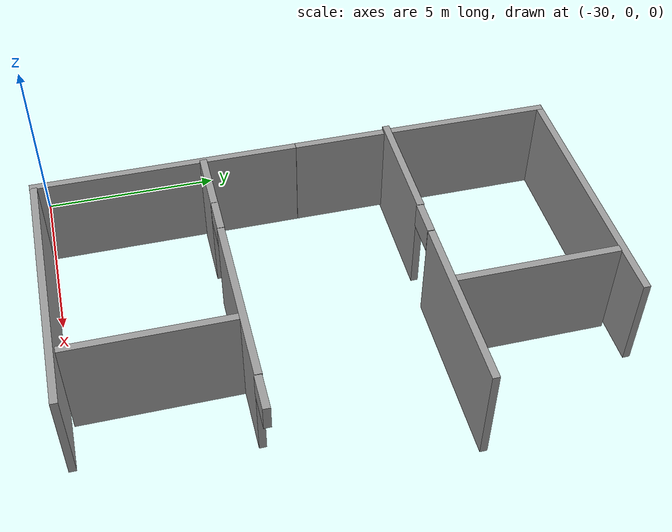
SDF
<sdf version="1.7">
 <world name="default">
  <model name="grey_wall">
   <static>1</static>
   <link name="link">
    <pose>0 0 1.4 0 -0 0</pose>
    <collision name="collision"><geometry><box><size>7.5 0.2 2.8</size></box></geometry></collision>
    <visual name="visual">
     <cast_shadows>0</cast_shadows>
     <geometry><box><size>7.5 0.2 2.8</size></box></geometry>
     <material>
      <script>
       <uri>model://grey_wall/materials/scripts</uri>
       <uri>model://grey_wall/materials/textures</uri>
       <name>vrc/grey_wall</name>
      </script>
     </material>
    </visual>
   </link>
   <pose>-23.9976 -0.145866 0 0 -0 0</pose>
  </model>
  <model name="grey_wall_clone_0_clone_0">
   <static>1</static>
   <link name="link">
    <pose>0 0 1.4 0 -0 0</pose>
    <collision name="collision"><geometry><box><size>7.5 0.2 2.8</size></box></geometry></collision>
    <visual name="visual">
     <cast_shadows>0</cast_shadows>
     <geometry><box><size>7.5 0.2 2.8</size></box></geometry>
     <material>
      <script>
       <uri>model://grey_wall/materials/scripts</uri>
       <uri>model://grey_wall/materials/textures</uri>
       <name>vrc/grey_wall</name>
      </script>
     </material>
    </visual>
   </link>
   <pose>-27.7951 3.49573 0 0 -0 1.57</pose>
  </model>
  <model name="grey_wall_clone_0_clone">
   <static>1</static>
   <link name="link">
    <pose>0 0 1.4 0 -0 0</pose>
    <collision name="collision"><geometry><box><size>7.5 0.2 2.8</size></box></geometry></collision>
    <visual name="visual">
     <cast_shadows>0</cast_shadows>
     <geometry><box><size>7.5 0.2 2.8</size></box></geometry>
     <material>
      <script>
       <uri>model://grey_wall/materials/scripts</uri>
       <uri>model://grey_wall/materials/textures</uri>
       <name>vrc/grey_wall</name>
      </script>
     </material>
    </visual>
   </link>
   <pose>-27.7906 10.9996 0 0 -0 1.57</pose>
  </model>
  <model name="grey_wall_1_clone_0_clone">
   <static>1</static>
   <link name="link">
    <pose>0 0 1.4 0 -0 0</pose>
    <collision name="collision"><geometry><box><size>7.5 0.2 2.8</size></box></geometry></collision>
    <visual name="visual">
     <cast_shadows>0</cast_shadows>
     <geometry><box><size>7.5 0.2 2.8</size></box></geometry>
     <material>
      <script>
       <uri>model://grey_wall/materials/scripts</uri>
       <uri>model://grey_wall/materials/textures</uri>
       <name>vrc/grey_wall</name>
      </script>
     </material>
    </visual>
   </link>
   <pose>-24.1114 14.6546 0 0 -0 0</pose>
  </model>
  <model name="grey_wall_1_clone_1_clone_clone_0_clone_clone_clone">
   <link name="link">
    <pose>0 0 1.4 0 -0 0</pose>
    <inertial>
     <mass>1</mass>
     <inertia><ixx>1</ixx><ixy>0</ixy><ixz>0</ixz><iyy>1</iyy><iyz>0</iyz><izz>1</izz></inertia>
    </inertial>
    <visual name="visual">
     <cast_shadows>0</cast_shadows>
     <geometry><box><size>4.5 0.2 3</size></box></geometry>
     <material>
      <script>
       <uri>model://grey_wall/materials/scripts</uri>
       <uri>model://grey_wall/materials/textures</uri>
       <name>vrc/grey_wall</name>
      </script>
      <shader type="pixel"><normal_map>__default__</normal_map></shader>
      <ambient>1 1 1 1</ambient>
      <diffuse>1 1 1 1</diffuse>
      <specular>0 0 0 1</specular>
      <emissive>0 0 0 1</emissive>
     </material>
    </visual>
    <collision name="collision">
     <geometry><box><size>4.5 0.2 3</size></box></geometry>
     <surface>
      <friction>
       <ode><mu>1</mu><mu2>1</mu2><fdir1>0 0 0</fdir1><slip1>0</slip1><slip2>0</slip2></ode>
       <torsional>
        <coefficient>1</coefficient>
        <patch_radius>0</patch_radius>
        <surface_radius>0</surface_radius>
        <use_patch_radius>1</use_patch_radius>
        <ode><slip>0</slip></ode>
       </torsional>
      </friction>
      <bounce><restitution_coefficient>0</restitution_coefficient><threshold>1e+06</threshold></bounce>
      <contact>
       <collide_without_contact>0</collide_without_contact>
       <collide_without_contact_bitmask>1</collide_without_contact_bitmask>
       <collide_bitmask>1</collide_bitmask>
       <ode>
        <soft_cfm>0</soft_cfm>
        <soft_erp>0.2</soft_erp>
        <kp>1e+13</kp>
        <kd>1</kd>
        <max_vel>0.01</max_vel>
        <min_depth>0</min_depth>
       </ode>
       <bullet>
        <split_impulse>1</split_impulse>
        <split_impulse_penetration_threshold>-0.01</split_impulse_penetration_threshold>
        <soft_cfm>0</soft_cfm>
        <soft_erp>0.2</soft_erp>
        <kp>1e+13</kp>
        <kd>1</kd>
       </bullet>
      </contact>
     </surface>
    </collision>
   </link>
   <static>1</static>
   <pose>-21.7117 12.262 0 0 -0 1.57</pose>
  </model>
  <model name="grey_wall_1_clone_1_clone_clone_0_clone_clone_clone_0">
   <link name="link">
    <pose>0 0 1.4 0 -0 0</pose>
    <inertial>
     <mass>1</mass>
     <inertia><ixx>1</ixx><ixy>0</ixy><ixz>0</ixz><iyy>1</iyy><iyz>0</iyz><izz>1</izz></inertia>
    </inertial>
    <visual name="visual">
     <cast_shadows>0</cast_shadows>
     <geometry><box><size>4.5 0.2 3</size></box></geometry>
     <material>
      <script>
       <uri>model://grey_wall/materials/scripts</uri>
       <uri>model://grey_wall/materials/textures</uri>
       <name>vrc/grey_wall</name>
      </script>
      <shader type="pixel"><normal_map>__default__</normal_map></shader>
      <ambient>1 1 1 1</ambient>
      <diffuse>1 1 1 1</diffuse>
      <specular>0 0 0 1</specular>
      <emissive>0 0 0 1</emissive>
     </material>
    </visual>
    <collision name="collision">
     <geometry><box><size>4.5 0.2 3</size></box></geometry>
     <surface>
      <friction>
       <ode><mu>1</mu><mu2>1</mu2><fdir1>0 0 0</fdir1><slip1>0</slip1><slip2>0</slip2></ode>
       <torsional>
        <coefficient>1</coefficient>
        <patch_radius>0</patch_radius>
        <surface_radius>0</surface_radius>
        <use_patch_radius>1</use_patch_radius>
        <ode><slip>0</slip></ode>
       </torsional>
      </friction>
      <bounce><restitution_coefficient>0</restitution_coefficient><threshold>1e+06</threshold></bounce>
      <contact>
       <collide_without_contact>0</collide_without_contact>
       <collide_without_contact_bitmask>1</collide_without_contact_bitmask>
       <collide_bitmask>1</collide_bitmask>
       <ode>
        <soft_cfm>0</soft_cfm>
        <soft_erp>0.2</soft_erp>
        <kp>1e+13</kp>
        <kd>1</kd>
        <max_vel>0.01</max_vel>
        <min_depth>0</min_depth>
       </ode>
       <bullet>
        <split_impulse>1</split_impulse>
        <split_impulse_penetration_threshold>-0.01</split_impulse_penetration_threshold>
        <soft_cfm>0</soft_cfm>
        <soft_erp>0.2</soft_erp>
        <kp>1e+13</kp>
        <kd>1</kd>
       </bullet>
      </contact>
     </surface>
    </collision>
   </link>
   <static>1</static>
   <pose>-21.7621 2.25746 0 0 -0 1.57</pose>
  </model>
  <model name="grey_wall_1_clone_1_clone_clone_0">
   <link name="link">
    <pose>0 0 1.4 0 -0 0</pose>
    <inertial>
     <mass>1</mass>
     <inertia><ixx>1</ixx><ixy>0</ixy><ixz>0</ixz><iyy>1</iyy><iyz>0</iyz><izz>1</izz></inertia>
    </inertial>
    <visual name="visual">
     <cast_shadows>0</cast_shadows>
     <geometry><box><size>5 0.2 3</size></box></geometry>
     <material>
      <script>
       <uri>model://grey_wall/materials/scripts</uri>
       <uri>model://grey_wall/materials/textures</uri>
       <name>vrc/grey_wall</name>
      </script>
      <shader type="pixel"><normal_map>__default__</normal_map></shader>
      <ambient>1 1 1 1</ambient>
      <diffuse>1 1 1 1</diffuse>
      <specular>0 0 0 1</specular>
      <emissive>0 0 0 1</emissive>
     </material>
    </visual>
    <collision name="collision">
     <geometry><box><size>5 0.2 3</size></box></geometry>
     <surface>
      <friction>
       <ode><mu>1</mu><mu2>1</mu2><fdir1>0 0 0</fdir1><slip1>0</slip1><slip2>0</slip2></ode>
       <torsional>
        <coefficient>1</coefficient>
        <patch_radius>0</patch_radius>
        <surface_radius>0</surface_radius>
        <use_patch_radius>1</use_patch_radius>
        <ode><slip>0</slip></ode>
       </torsional>
      </friction>
      <bounce><restitution_coefficient>0</restitution_coefficient><threshold>1e+06</threshold></bounce>
      <contact>
       <collide_without_contact>0</collide_without_contact>
       <collide_without_contact_bitmask>1</collide_without_contact_bitmask>
       <collide_bitmask>1</collide_bitmask>
       <ode>
        <soft_cfm>0</soft_cfm>
        <soft_erp>0.2</soft_erp>
        <kp>1e+13</kp>
        <kd>1</kd>
        <max_vel>0.01</max_vel>
        <min_depth>0</min_depth>
       </ode>
       <bullet>
        <split_impulse>1</split_impulse>
        <split_impulse_penetration_threshold>-0.01</split_impulse_penetration_threshold>
        <soft_cfm>0</soft_cfm>
        <soft_erp>0.2</soft_erp>
        <kp>1e+13</kp>
        <kd>1</kd>
       </bullet>
      </contact>
     </surface>
    </collision>
   </link>
   <static>1</static>
   <pose>-22.3954 4.57147 0 0 -0 0</pose>
  </model>
  <model name="grey_wall_1_clone_1_clone_clone_0_clone_clone_clone_3">
   <link name="link">
    <pose>0 0 1.4 0 -0 0</pose>
    <inertial>
     <mass>1</mass>
     <inertia><ixx>1</ixx><ixy>0</ixy><ixz>0</ixz><iyy>1</iyy><iyz>0</iyz><izz>1</izz></inertia>
    </inertial>
    <visual name="visual">
     <cast_shadows>0</cast_shadows>
     <geometry><box><size>5 0.2 3</size></box></geometry>
     <material>
      <script>
       <uri>model://grey_wall/materials/scripts</uri>
       <uri>model://grey_wall/materials/textures</uri>
       <name>vrc/grey_wall</name>
      </script>
      <shader type="pixel"><normal_map>__default__</normal_map></shader>
      <ambient>1 1 1 1</ambient>
      <diffuse>1 1 1 1</diffuse>
      <specular>0 0 0 1</specular>
      <emissive>0 0 0 1</emissive>
     </material>
    </visual>
    <collision name="collision">
     <geometry><box><size>5 0.2 3</size></box></geometry>
     <surface>
      <friction>
       <ode><mu>1</mu><mu2>1</mu2><fdir1>0 0 0</fdir1><slip1>0</slip1><slip2>0</slip2></ode>
       <torsional>
        <coefficient>1</coefficient>
        <patch_radius>0</patch_radius>
        <surface_radius>0</surface_radius>
        <use_patch_radius>1</use_patch_radius>
        <ode><slip>0</slip></ode>
       </torsional>
      </friction>
      <bounce><restitution_coefficient>0</restitution_coefficient><threshold>1e+06</threshold></bounce>
      <contact>
       <collide_without_contact>0</collide_without_contact>
       <collide_without_contact_bitmask>1</collide_without_contact_bitmask>
       <collide_bitmask>1</collide_bitmask>
       <ode>
        <soft_cfm>0</soft_cfm>
        <soft_erp>0.2</soft_erp>
        <kp>1e+13</kp>
        <kd>1</kd>
        <max_vel>0.01</max_vel>
        <min_depth>0</min_depth>
       </ode>
       <bullet>
        <split_impulse>1</split_impulse>
        <split_impulse_penetration_threshold>-0.01</split_impulse_penetration_threshold>
        <soft_cfm>0</soft_cfm>
        <soft_erp>0.2</soft_erp>
        <kp>1e+13</kp>
        <kd>1</kd>
       </bullet>
      </contact>
     </surface>
    </collision>
   </link>
   <static>1</static>
   <pose>-20.9751 9.94098 0 0 -0 0</pose>
  </model>
  <model name="grey_wall_1_clone_1_clone_clone_1_clone_clone">
   <link name="link">
    <pose>0 0 1.4 0 -0 0</pose>
    <inertial>
     <mass>1</mass>
     <inertia><ixx>1</ixx><ixy>0</ixy><ixz>0</ixz><iyy>1</iyy><iyz>0</iyz><izz>1</izz></inertia>
    </inertial>
    <visual name="visual">
     <cast_shadows>0</cast_shadows>
     <geometry><box><size>3.4 0.2 3</size></box></geometry>
     <material>
      <script>
       <uri>model://grey_wall/materials/scripts</uri>
       <uri>model://grey_wall/materials/textures</uri>
       <name>vrc/grey_wall</name>
      </script>
      <shader type="pixel"><normal_map>__default__</normal_map></shader>
      <ambient>1 1 1 1</ambient>
      <diffuse>1 1 1 1</diffuse>
      <specular>0 0 0 1</specular>
      <emissive>0 0 0 1</emissive>
     </material>
    </visual>
    <collision name="collision">
     <geometry><box><size>3.4 0.2 3</size></box></geometry>
     <surface>
      <friction>
       <ode><mu>1</mu><mu2>1</mu2><fdir1>0 0 0</fdir1><slip1>0</slip1><slip2>0</slip2></ode>
       <torsional>
        <coefficient>1</coefficient>
        <patch_radius>0</patch_radius>
        <surface_radius>0</surface_radius>
        <use_patch_radius>1</use_patch_radius>
        <ode><slip>0</slip></ode>
       </torsional>
      </friction>
      <bounce><restitution_coefficient>0</restitution_coefficient><threshold>1e+06</threshold></bounce>
      <contact>
       <collide_without_contact>0</collide_without_contact>
       <collide_without_contact_bitmask>1</collide_without_contact_bitmask>
       <collide_bitmask>1</collide_bitmask>
       <ode>
        <soft_cfm>0</soft_cfm>
        <soft_erp>0.2</soft_erp>
        <kp>1e+13</kp>
        <kd>1</kd>
        <max_vel>0.01</max_vel>
        <min_depth>0</min_depth>
       </ode>
       <bullet>
        <split_impulse>1</split_impulse>
        <split_impulse_penetration_threshold>-0.01</split_impulse_penetration_threshold>
        <soft_cfm>0</soft_cfm>
        <soft_erp>0.2</soft_erp>
        <kp>1e+13</kp>
        <kd>1</kd>
       </bullet>
      </contact>
     </surface>
    </collision>
   </link>
   <static>1</static>
   <pose>-26.203 9.9635 0 0 -0 0</pose>
  </model>
  <model name="grey_wall_1_clone_1_clone_clone_1_clone_clone_0_clone_clone_clone_clone_clone">
   <link name="link">
    <pose>0 0 1.4 0 -0 0</pose>
    <inertial>
     <mass>1</mass>
     <inertia><ixx>1</ixx><ixy>0</ixy><ixz>0</ixz><iyy>1</iyy><iyz>0</iyz><izz>1</izz></inertia>
    </inertial>
    <visual name="visual">
     <cast_shadows>0</cast_shadows>
     <geometry><box><size>1 0.2 0.75</size></box></geometry>
     <material>
      <script>
       <uri>model://grey_wall/materials/scripts</uri>
       <uri>model://grey_wall/materials/textures</uri>
       <name>vrc/grey_wall</name>
      </script>
      <shader type="pixel"><normal_map>__default__</normal_map></shader>
      <ambient>1 1 1 1</ambient>
      <diffuse>1 1 1 1</diffuse>
      <specular>0 0 0 1</specular>
      <emissive>0 0 0 1</emissive>
     </material>
    </visual>
    <collision name="collision">
     <geometry><box><size>1 0.2 0.75</size></box></geometry>
     <surface>
      <friction>
       <ode><mu>1</mu><mu2>1</mu2><fdir1>0 0 0</fdir1><slip1>0</slip1><slip2>0</slip2></ode>
       <torsional>
        <coefficient>1</coefficient>
        <patch_radius>0</patch_radius>
        <surface_radius>0</surface_radius>
        <use_patch_radius>1</use_patch_radius>
        <ode><slip>0</slip></ode>
       </torsional>
      </friction>
      <bounce><restitution_coefficient>0</restitution_coefficient><threshold>1e+06</threshold></bounce>
      <contact>
       <collide_without_contact>0</collide_without_contact>
       <collide_without_contact_bitmask>1</collide_without_contact_bitmask>
       <collide_bitmask>1</collide_bitmask>
       <ode>
        <soft_cfm>0</soft_cfm>
        <soft_erp>0.2</soft_erp>
        <kp>1e+13</kp>
        <kd>1</kd>
        <max_vel>0.01</max_vel>
        <min_depth>0</min_depth>
       </ode>
       <bullet>
        <split_impulse>1</split_impulse>
        <split_impulse_penetration_threshold>-0.01</split_impulse_penetration_threshold>
        <soft_cfm>0</soft_cfm>
        <soft_erp>0.2</soft_erp>
        <kp>1e+13</kp>
        <kd>1</kd>
       </bullet>
      </contact>
     </surface>
    </collision>
   </link>
   <static>1</static>
   <pose>-23.9967 9.94316 1.12 0 -0 0</pose>
  </model>
  <model name="grey_wall_1_clone_1_clone_clone_1_clone_clone_0_clone_clone_clone_clone_clone_0">
   <link name="link">
    <pose>0 0 1.4 0 -0 0</pose>
    <inertial>
     <mass>1</mass>
     <inertia><ixx>1</ixx><ixy>0</ixy><ixz>0</ixz><iyy>1</iyy><iyz>0</iyz><izz>1</izz></inertia>
    </inertial>
    <visual name="visual">
     <cast_shadows>0</cast_shadows>
     <geometry><box><size>1 0.2 0.75</size></box></geometry>
     <material>
      <script>
       <uri>model://grey_wall/materials/scripts</uri>
       <uri>model://grey_wall/materials/textures</uri>
       <name>vrc/grey_wall</name>
      </script>
      <shader type="pixel"><normal_map>__default__</normal_map></shader>
      <ambient>1 1 1 1</ambient>
      <diffuse>1 1 1 1</diffuse>
      <specular>0 0 0 1</specular>
      <emissive>0 0 0 1</emissive>
     </material>
    </visual>
    <collision name="collision">
     <geometry><box><size>1 0.2 0.75</size></box></geometry>
     <surface>
      <friction>
       <ode><mu>1</mu><mu2>1</mu2><fdir1>0 0 0</fdir1><slip1>0</slip1><slip2>0</slip2></ode>
       <torsional>
        <coefficient>1</coefficient>
        <patch_radius>0</patch_radius>
        <surface_radius>0</surface_radius>
        <use_patch_radius>1</use_patch_radius>
        <ode><slip>0</slip></ode>
       </torsional>
      </friction>
      <bounce><restitution_coefficient>0</restitution_coefficient><threshold>1e+06</threshold></bounce>
      <contact>
       <collide_without_contact>0</collide_without_contact>
       <collide_without_contact_bitmask>1</collide_without_contact_bitmask>
       <collide_bitmask>1</collide_bitmask>
       <ode>
        <soft_cfm>0</soft_cfm>
        <soft_erp>0.2</soft_erp>
        <kp>1e+13</kp>
        <kd>1</kd>
        <max_vel>0.01</max_vel>
        <min_depth>0</min_depth>
       </ode>
       <bullet>
        <split_impulse>1</split_impulse>
        <split_impulse_penetration_threshold>-0.01</split_impulse_penetration_threshold>
        <soft_cfm>0</soft_cfm>
        <soft_erp>0.2</soft_erp>
        <kp>1e+13</kp>
        <kd>1</kd>
       </bullet>
      </contact>
     </surface>
    </collision>
   </link>
   <static>1</static>
   <pose>-19.387 4.55981 1.12 0 -0 0</pose>
  </model>
  <model name="grey_wall_1_clone_1_clone_clone_1_clone_clone_0_clone_clone_clone_clone_clone_1">
   <link name="link">
    <pose>0 0 1.4 0 -0 0</pose>
    <inertial>
     <mass>1</mass>
     <inertia><ixx>1</ixx><ixy>0</ixy><ixz>0</ixz><iyy>1</iyy><iyz>0</iyz><izz>1</izz></inertia>
    </inertial>
    <visual name="visual">
     <cast_shadows>0</cast_shadows>
     <geometry><box><size>1 0.2 0.75</size></box></geometry>
     <material>
      <script>
       <uri>model://grey_wall/materials/scripts</uri>
       <uri>model://grey_wall/materials/textures</uri>
       <name>vrc/grey_wall</name>
      </script>
      <shader type="pixel"><normal_map>__default__</normal_map></shader>
      <ambient>1 1 1 1</ambient>
      <diffuse>1 1 1 1</diffuse>
      <specular>0 0 0 1</specular>
      <emissive>0 0 0 1</emissive>
     </material>
    </visual>
    <collision name="collision">
     <geometry><box><size>1 0.2 0.75</size></box></geometry>
     <surface>
      <friction>
       <ode><mu>1</mu><mu2>1</mu2><fdir1>0 0 0</fdir1><slip1>0</slip1><slip2>0</slip2></ode>
       <torsional>
        <coefficient>1</coefficient>
        <patch_radius>0</patch_radius>
        <surface_radius>0</surface_radius>
        <use_patch_radius>1</use_patch_radius>
        <ode><slip>0</slip></ode>
       </torsional>
      </friction>
      <bounce><restitution_coefficient>0</restitution_coefficient><threshold>1e+06</threshold></bounce>
      <contact>
       <collide_without_contact>0</collide_without_contact>
       <collide_without_contact_bitmask>1</collide_without_contact_bitmask>
       <collide_bitmask>1</collide_bitmask>
       <ode>
        <soft_cfm>0</soft_cfm>
        <soft_erp>0.2</soft_erp>
        <kp>1e+13</kp>
        <kd>1</kd>
        <max_vel>0.01</max_vel>
        <min_depth>0</min_depth>
       </ode>
       <bullet>
        <split_impulse>1</split_impulse>
        <split_impulse_penetration_threshold>-0.01</split_impulse_penetration_threshold>
        <soft_cfm>0</soft_cfm>
        <soft_erp>0.2</soft_erp>
        <kp>1e+13</kp>
        <kd>1</kd>
       </bullet>
      </contact>
     </surface>
    </collision>
   </link>
   <static>1</static>
   <pose>-25.4102 4.57862 1.12 0 -0 0</pose>
  </model>
  <model name="grey_wall_1_clone_1_clone_clone_1_clone_clone_1_clone_clone_clone_0">
   <link name="link">
    <pose>0 0 1.4 0 -0 0</pose>
    <inertial>
     <mass>1</mass>
     <inertia><ixx>1</ixx><ixy>0</ixy><ixz>0</ixz><iyy>1</iyy><iyz>0</iyz><izz>1</izz></inertia>
    </inertial>
    <visual name="visual">
     <cast_shadows>0</cast_shadows>
     <geometry><box><size>1.8 0.2 3</size></box></geometry>
     <material>
      <script>
       <uri>model://grey_wall/materials/scripts</uri>
       <uri>model://grey_wall/materials/textures</uri>
       <name>vrc/grey_wall</name>
      </script>
      <shader type="pixel"><normal_map>__default__</normal_map></shader>
      <ambient>1 1 1 1</ambient>
      <diffuse>1 1 1 1</diffuse>
      <specular>0 0 0 1</specular>
      <emissive>0 0 0 1</emissive>
     </material>
    </visual>
    <collision name="collision">
     <geometry><box><size>1.8 0.2 3</size></box></geometry>
     <surface>
      <friction>
       <ode><mu>1</mu><mu2>1</mu2><fdir1>0 0 0</fdir1><slip1>0</slip1><slip2>0</slip2></ode>
       <torsional>
        <coefficient>1</coefficient>
        <patch_radius>0</patch_radius>
        <surface_radius>0</surface_radius>
        <use_patch_radius>1</use_patch_radius>
        <ode><slip>0</slip></ode>
       </torsional>
      </friction>
      <bounce><restitution_coefficient>0</restitution_coefficient><threshold>1e+06</threshold></bounce>
      <contact>
       <collide_without_contact>0</collide_without_contact>
       <collide_without_contact_bitmask>1</collide_without_contact_bitmask>
       <collide_bitmask>1</collide_bitmask>
       <ode>
        <soft_cfm>0</soft_cfm>
        <soft_erp>0.2</soft_erp>
        <kp>1e+13</kp>
        <kd>1</kd>
        <max_vel>0.01</max_vel>
        <min_depth>0</min_depth>
       </ode>
       <bullet>
        <split_impulse>1</split_impulse>
        <split_impulse_penetration_threshold>-0.01</split_impulse_penetration_threshold>
        <soft_cfm>0</soft_cfm>
        <soft_erp>0.2</soft_erp>
        <kp>1e+13</kp>
        <kd>1</kd>
       </bullet>
      </contact>
     </surface>
    </collision>
   </link>
   <static>1</static>
   <pose>-26.7987 4.57237 0 0 -0 0</pose>
  </model>
 </world>
</sdf>
